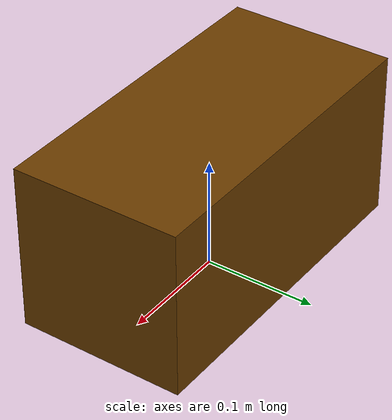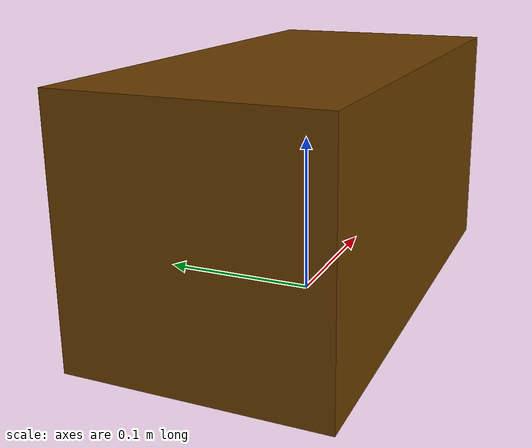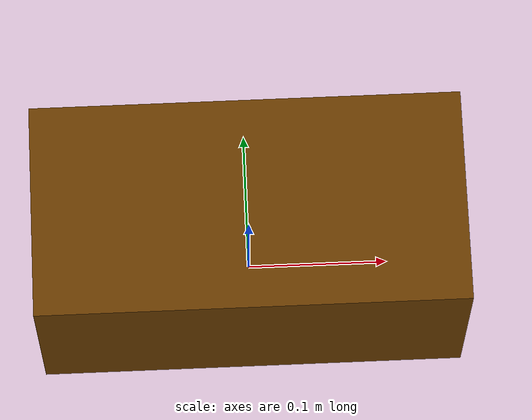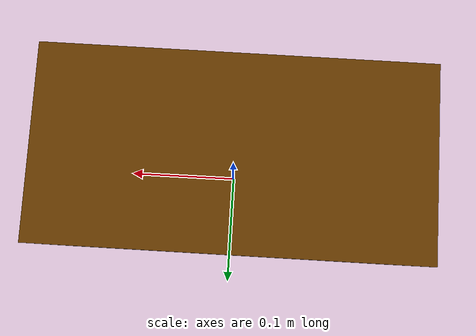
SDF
<?xml version="1.0"?>
<sdf version='1.6'>
<model name="package2">
  <link name="base_link">
    <inertial>
      <pose frame=''>0 0 0 0 0 0 </pose>
      <mass>1</mass>
        <inertia>
          <ixx>1.17e-4</ixx>
          <ixy>0</ixy>
          <ixz>0</ixz>
          <iyy>1.9e-4</iyy>
          <iyz>0</iyz>
          <izz>1.9e-4</izz>
        </inertia>
    </inertial>
    <visual name='base_link'>
      <pose frame=''>0 0 0.075 0 0 0</pose>
      <geometry>
        <box>
          <size>0.3 0.15 0.15</size>
        </box>
      </geometry>
      <material>
        <diffuse>0.42 0.24 0 1.0</diffuse>
      </material>
    </visual>

    <collision name='box_collision'>
      <pose>0 0 0.075 0 0 0</pose>
      <geometry>
        <box>
          <size>0.299 0.149 0.149</size>
        </box>
      </geometry>
    </collision>

    <collision name='point_collision1'>
      <pose>0.15 0.075 0 0 0 0</pose>
      <geometry>
        <sphere><radius>1e-7</radius></sphere>
      </geometry>
    </collision>

    <collision name='point_collision2'>
      <pose>0.15 -0.075 0 0 0 0</pose>
      <geometry>
        <sphere><radius>1e-7</radius></sphere>
      </geometry>
    </collision>

    <collision name='point_collision3'>
      <pose>-0.15 0.075 0 0 0 0</pose>
      <geometry>
        <sphere><radius>1e-7</radius></sphere>
      </geometry>
    </collision>

    <collision name='point_collision4'>
      <pose>-0.15 -0.075 0 0 0 0</pose>
      <geometry>
        <sphere><radius>1e-7</radius></sphere>
      </geometry>
    </collision>

    <collision name='point_collision5'>
      <pose>0.15 0.075 0.075 0 0 0</pose>
      <geometry>
        <sphere><radius>1e-7</radius></sphere>
      </geometry>
    </collision>

    <collision name='point_collision6'>
      <pose>0.15 -0.075 0.075 0 0 0</pose>
      <geometry>
        <sphere><radius>1e-7</radius></sphere>
      </geometry>
    </collision>

    <collision name='point_collision7'>
      <pose>-0.15 0.075 0.075 0 0 0</pose>
      <geometry>
        <sphere><radius>1e-7</radius></sphere>
      </geometry>
    </collision>

    <collision name='point_collision8'>
      <pose>-0.15 -0.075 0.075 0 0 0</pose>
      <geometry>
        <sphere><radius>1e-7</radius></sphere>
      </geometry>
    </collision>

   </link>
</model>
</sdf>
